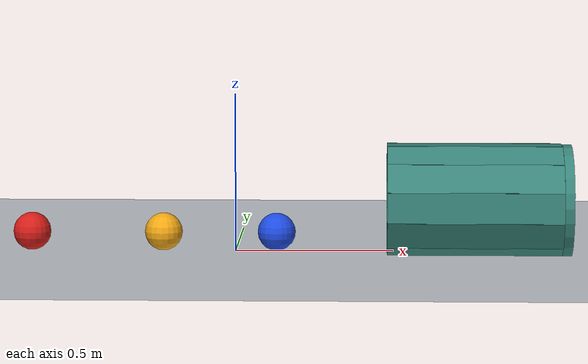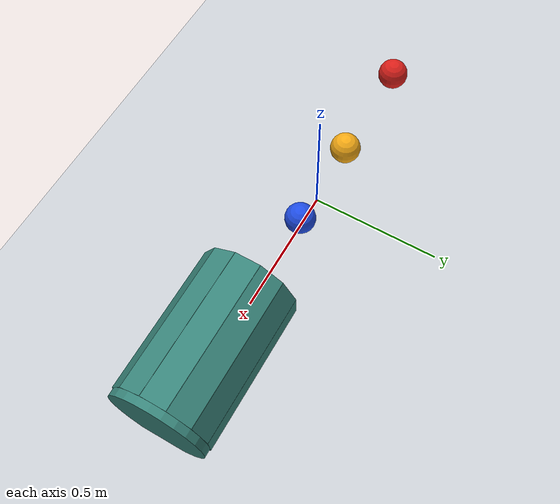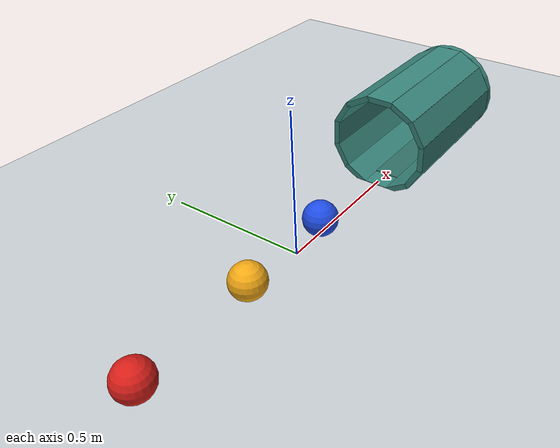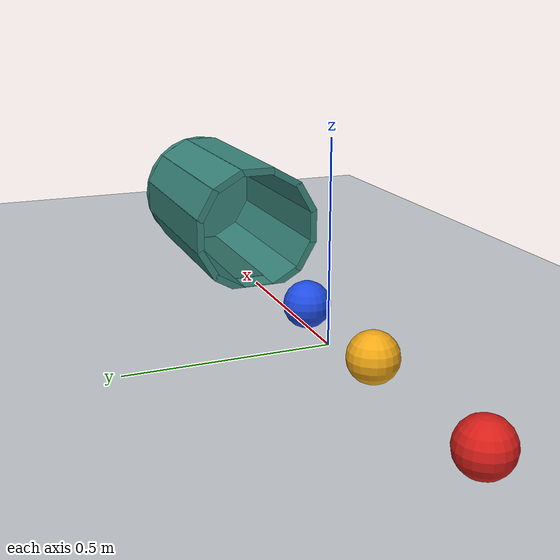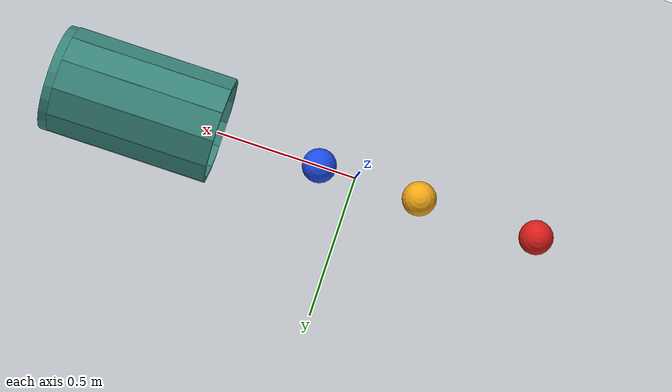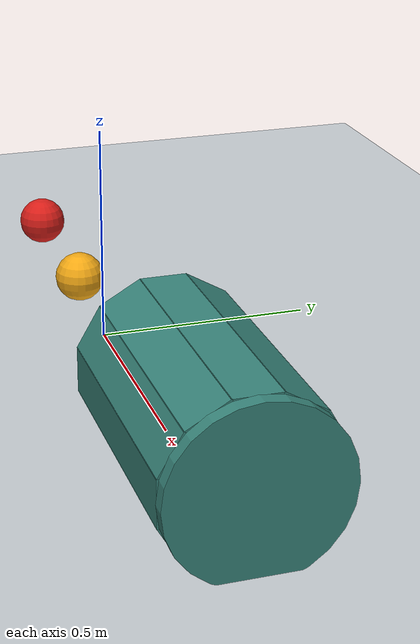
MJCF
<mujoco model="three_balls_into_cup">
  <compiler angle="radian"/>
  <option timestep="0.002" gravity="0 0 -9.81" integrator="implicitfast" cone="elliptic" iterations="100" impratio="5"/>
  <size nconmax="200" njmax="1000"/>
  <statistic center="0.15 0 0.12" extent="1.8"/>

  <visual>
    <global azimuth="140" elevation="-25"/>
    <headlight ambient="0.4 0.4 0.4" diffuse="0.7 0.7 0.7" specular="0.2 0.2 0.2"/>
    <rgba haze="0.85 0.88 0.92 1"/>
  </visual>

  <worldbody>
    <light name="overhead" pos="-0.3 -1.2 3" dir="0.1 0.3 -1" diffuse="0.8 0.8 0.8"/>
    <camera name="overview" mode="targetbody" target="cup" pos="-1.8 -2.4 1.5"/>

    <geom name="floor" type="plane" size="4 3 0.1" pos="0 0 0" rgba="0.78 0.80 0.82 1" condim="6" priority="1" friction="0.65 0.004 0.0015" solref="0.008 1" solimp="0.95 0.99 0.001"/>

    <body name="ball1" pos="-0.65 0 0.06">
      <freejoint name="ball1_free"/>
      <geom name="ball1_sphere" type="sphere" size="0.06" density="500" rgba="0.85 0.12 0.10 1" condim="3" friction="0.05 0.001 0.0015" solref="-60000 -18" solimp="0.95 0.99 0.001"/>
    </body>

    <body name="ball2" pos="-0.23 0 0.06">
      <freejoint name="ball2_free"/>
      <geom name="ball2_sphere" type="sphere" size="0.06" density="500" rgba="0.95 0.66 0.08 1" condim="3" friction="0.05 0.001 0.0015" solref="-60000 -18" solimp="0.95 0.99 0.001"/>
    </body>

    <body name="ball3" pos="0.13 0 0.06">
      <freejoint name="ball3_free"/>
      <geom name="ball3_sphere" type="sphere" size="0.06" density="500" rgba="0.12 0.30 0.90 1" condim="3" friction="0.05 0.001 0.0015" solref="-60000 -18" solimp="0.95 0.99 0.001"/>
    </body>

    <!-- A hollow, twelve-sided cup lying along x, open toward -x. -->
    <body name="cup" pos="0.755 0 0.16">
      <geom name="cup_wall_00" type="box" size="0.275 0.049 0.010" pos="0 0 0.17" quat="1 0 0 0" rgba="0.22 0.52 0.48 1" condim="6" priority="2" friction="0.65 0.004 0.0015" solref="0.008 1"/>
      <geom name="cup_wall_01" type="box" size="0.275 0.049 0.010" pos="0 -0.085 0.147224" quat="0.9659258 0.2588190 0 0" rgba="0.22 0.52 0.48 1" condim="6" priority="2" friction="0.65 0.004 0.0015" solref="0.008 1"/>
      <geom name="cup_wall_02" type="box" size="0.275 0.049 0.010" pos="0 -0.147224 0.085" quat="0.8660254 0.5 0 0" rgba="0.22 0.52 0.48 1" condim="6" priority="2" friction="0.65 0.004 0.0015" solref="0.008 1"/>
      <geom name="cup_wall_03" type="box" size="0.275 0.049 0.010" pos="0 -0.17 0" quat="0.7071068 0.7071068 0 0" rgba="0.22 0.52 0.48 1" condim="6" priority="2" friction="0.65 0.004 0.0015" solref="0.008 1"/>
      <geom name="cup_wall_04" type="box" size="0.275 0.049 0.010" pos="0 -0.147224 -0.085" quat="0.5 0.8660254 0 0" rgba="0.22 0.52 0.48 1" condim="6" priority="2" friction="0.65 0.004 0.0015" solref="0.008 1"/>
      <geom name="cup_wall_05" type="box" size="0.275 0.049 0.010" pos="0 -0.085 -0.147224" quat="0.2588190 0.9659258 0 0" rgba="0.22 0.52 0.48 1" condim="6" priority="2" friction="0.65 0.004 0.0015" solref="0.008 1"/>
      <geom name="cup_wall_06" type="box" size="0.275 0.049 0.010" pos="0 0 -0.17" quat="0 1 0 0" rgba="0.22 0.52 0.48 1" condim="6" priority="2" friction="0.65 0.004 0.0015" solref="0.008 1"/>
      <geom name="cup_wall_07" type="box" size="0.275 0.049 0.010" pos="0 0.085 -0.147224" quat="0.2588190 -0.9659258 0 0" rgba="0.22 0.52 0.48 1" condim="6" priority="2" friction="0.65 0.004 0.0015" solref="0.008 1"/>
      <geom name="cup_wall_08" type="box" size="0.275 0.049 0.010" pos="0 0.147224 -0.085" quat="0.5 -0.8660254 0 0" rgba="0.22 0.52 0.48 1" condim="6" priority="2" friction="0.65 0.004 0.0015" solref="0.008 1"/>
      <geom name="cup_wall_09" type="box" size="0.275 0.049 0.010" pos="0 0.17 0" quat="0.7071068 -0.7071068 0 0" rgba="0.22 0.52 0.48 1" condim="6" priority="2" friction="0.65 0.004 0.0015" solref="0.008 1"/>
      <geom name="cup_wall_10" type="box" size="0.275 0.049 0.010" pos="0 0.147224 0.085" quat="0.8660254 -0.5 0 0" rgba="0.22 0.52 0.48 1" condim="6" priority="2" friction="0.65 0.004 0.0015" solref="0.008 1"/>
      <geom name="cup_wall_11" type="box" size="0.275 0.049 0.010" pos="0 0.085 0.147224" quat="0.9659258 -0.2588190 0 0" rgba="0.22 0.52 0.48 1" condim="6" priority="2" friction="0.65 0.004 0.0015" solref="0.008 1"/>

      <!-- A nearly flush interior landing surface dissipates rolling motion. -->
      <geom name="cup_landing" type="box" size="0.23 0.065 0.005" pos="0.035 0 -0.164" rgba="0.18 0.43 0.39 1" condim="6" priority="2" friction="0.8 0.004 0.006" solref="0.008 1"/>
      <geom name="cup_base" type="cylinder" size="0.182 0.015" pos="0.29 0 0" quat="0.7071068 0 0.7071068 0" rgba="0.22 0.52 0.48 1" condim="6" priority="2" friction="0.8 0.004 0.006" solref="0.008 1"/>
    </body>
  </worldbody>

  <keyframe>
    <key name="start" qpos="-0.65 0 0.06 1 0 0 0  -0.23 0 0.06 1 0 0 0  0.13 0 0.06 1 0 0 0" qvel="1.9 0 0 0 31.6666667 0  0 0 0 0 0 0  0 0 0 0 0 0"/>
  </keyframe>
</mujoco>
